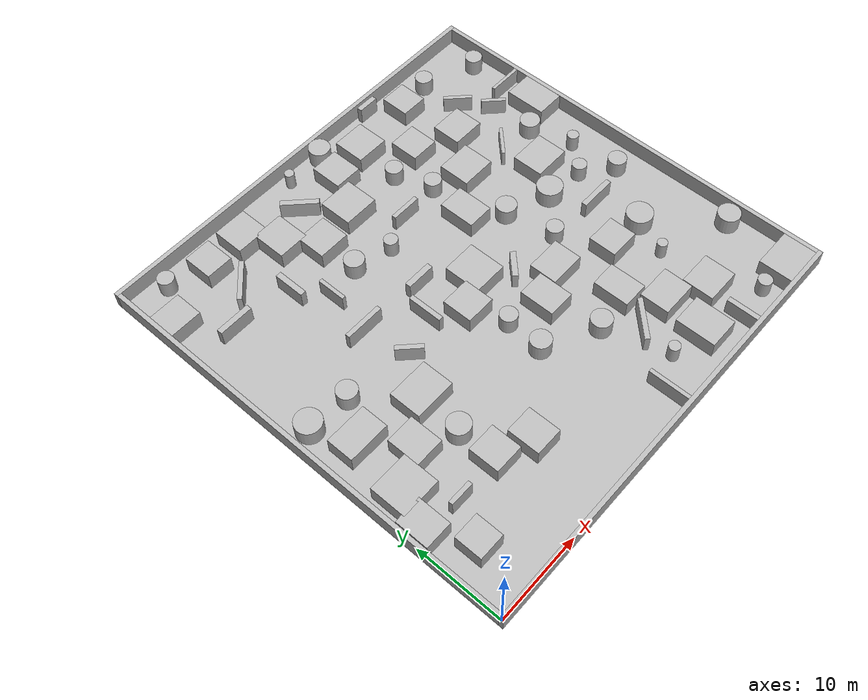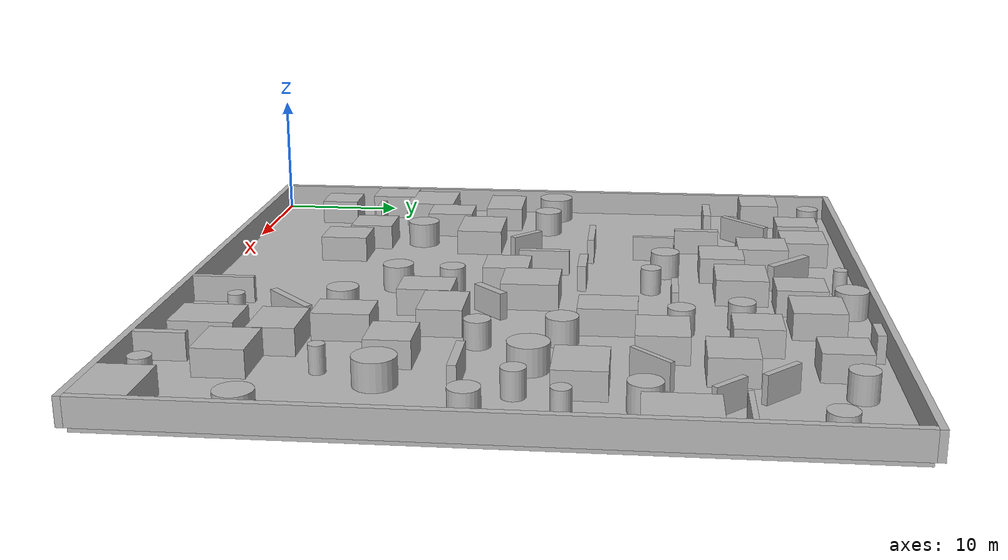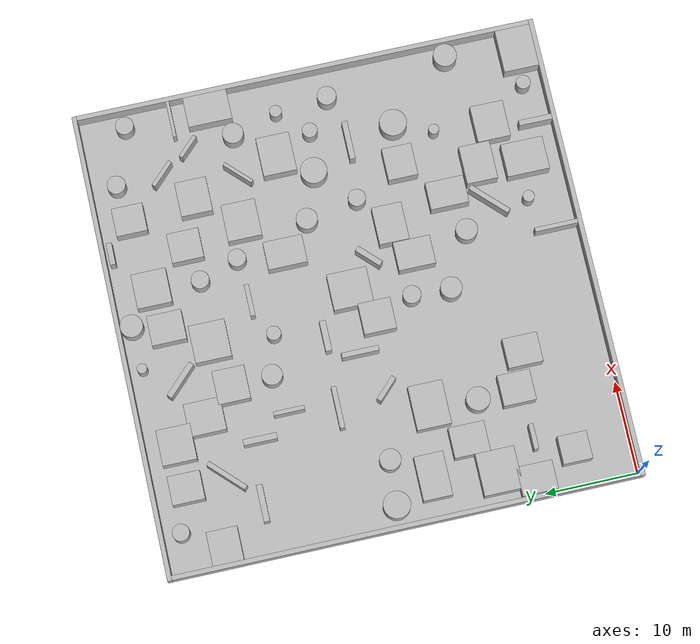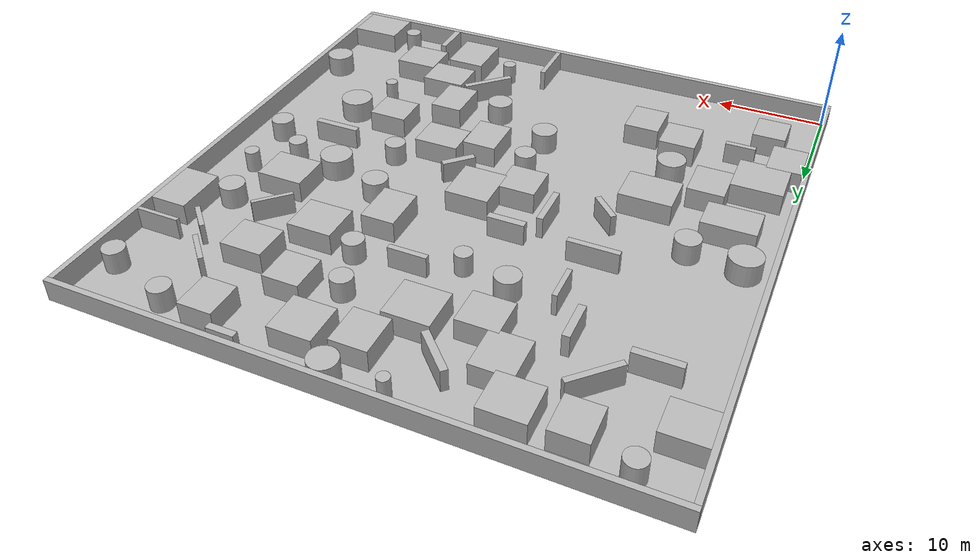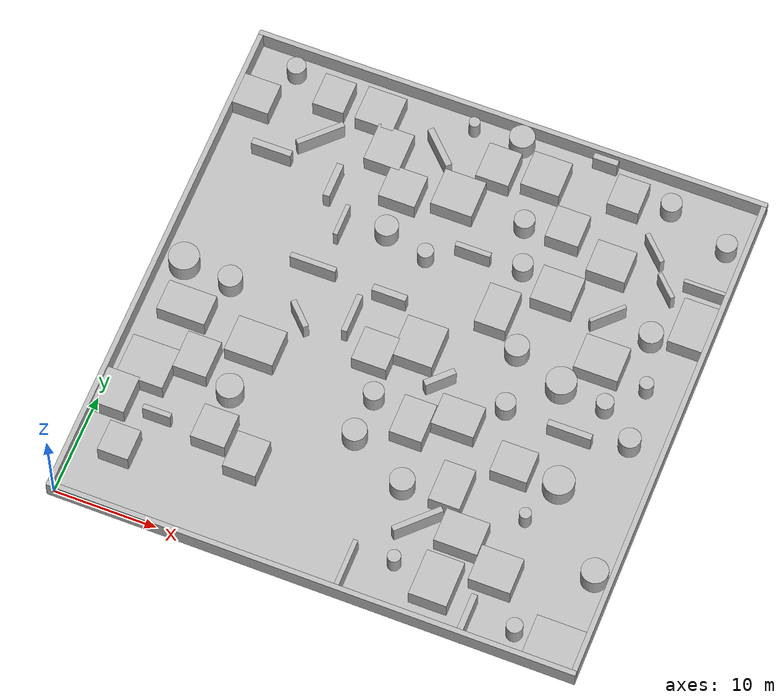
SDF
<?xml version="1.0" ?>
<sdf version="1.7">
  <world name="02_dense">
    <gravity>0 0 -9.8</gravity>
    <include>
      <uri>model://sun</uri>
    </include>

    <model name="ground_plane_custom">
      <static>true</static>
      <pose>25.000000 25.000000 -0.250000 0 0 0</pose>
      <link name="link">
        <collision name="collision">
          <geometry>
            <box>
              <size>50.000000 50.000000 0.500000</size>
            </box>
          </geometry>
        </collision>
        <visual name="visual">
          <geometry>
            <box>
              <size>50.000000 50.000000 0.500000</size>
            </box>
          </geometry>
        </visual>
      </link>
    </model>

    <model name="outer_wall_bottom">
      <static>true</static>
      <pose>25.000000 -0.250000 1.000000 0 0 0</pose>
      <link name="link">
        <collision name="collision">
          <geometry>
            <box>
              <size>51.000000 0.500000 2.000000</size>
            </box>
          </geometry>
        </collision>
        <visual name="visual">
          <geometry>
            <box>
              <size>51.000000 0.500000 2.000000</size>
            </box>
          </geometry>
        </visual>
      </link>
    </model>
    <model name="outer_wall_top">
      <static>true</static>
      <pose>25.000000 50.250000 1.000000 0 0 0</pose>
      <link name="link">
        <collision name="collision">
          <geometry>
            <box>
              <size>51.000000 0.500000 2.000000</size>
            </box>
          </geometry>
        </collision>
        <visual name="visual">
          <geometry>
            <box>
              <size>51.000000 0.500000 2.000000</size>
            </box>
          </geometry>
        </visual>
      </link>
    </model>
    <model name="outer_wall_left">
      <static>true</static>
      <pose>-0.250000 25.000000 1.000000 0 0 0</pose>
      <link name="link">
        <collision name="collision">
          <geometry>
            <box>
              <size>0.500000 50.000000 2.000000</size>
            </box>
          </geometry>
        </collision>
        <visual name="visual">
          <geometry>
            <box>
              <size>0.500000 50.000000 2.000000</size>
            </box>
          </geometry>
        </visual>
      </link>
    </model>
    <model name="outer_wall_right">
      <static>true</static>
      <pose>50.250000 25.000000 1.000000 0 0 0</pose>
      <link name="link">
        <collision name="collision">
          <geometry>
            <box>
              <size>0.500000 50.000000 2.000000</size>
            </box>
          </geometry>
        </collision>
        <visual name="visual">
          <geometry>
            <box>
              <size>0.500000 50.000000 2.000000</size>
            </box>
          </geometry>
        </visual>
      </link>
    </model>

    <model name="obstacle_0000">
      <static>true</static>
      <pose>21.981199 48.590276 1.000000 0 0 0</pose>
      <link name="link">
        <collision name="collision">
          <geometry>
            <cylinder>
              <radius>0.539602</radius>
              <length>2.000000</length>
            </cylinder>
          </geometry>
        </collision>
        <visual name="visual">
          <geometry>
            <cylinder>
              <radius>0.539602</radius>
              <length>2.000000</length>
            </cylinder>
          </geometry>
        </visual>
      </link>
    </model>
    <model name="obstacle_0001">
      <static>true</static>
      <pose>8.624078 46.637991 1.000000 0 0 0.000000</pose>
      <link name="link">
        <collision name="collision">
          <geometry>
            <box>
              <size>3.091987 3.481658 2.000000</size>
            </box>
          </geometry>
        </collision>
        <visual name="visual">
          <geometry>
            <box>
              <size>3.091987 3.481658 2.000000</size>
            </box>
          </geometry>
        </visual>
      </link>
    </model>
    <model name="obstacle_0002">
      <static>true</static>
      <pose>4.158465 48.115484 1.000000 0 0 0</pose>
      <link name="link">
        <collision name="collision">
          <geometry>
            <cylinder>
              <radius>0.921165</radius>
              <length>2.000000</length>
            </cylinder>
          </geometry>
        </collision>
        <visual name="visual">
          <geometry>
            <cylinder>
              <radius>0.921165</radius>
              <length>2.000000</length>
            </cylinder>
          </geometry>
        </visual>
      </link>
    </model>
    <model name="obstacle_0003">
      <static>true</static>
      <pose>19.915779 44.902232 1.000000 0 0 2.356194</pose>
      <link name="link">
        <collision name="collision">
          <geometry>
            <box>
              <size>4.240587 0.628657 2.000000</size>
            </box>
          </geometry>
        </collision>
        <visual name="visual">
          <geometry>
            <box>
              <size>4.240587 0.628657 2.000000</size>
            </box>
          </geometry>
        </visual>
      </link>
    </model>
    <model name="obstacle_0004">
      <static>true</static>
      <pose>26.700431 48.770476 1.000000 0 0 0</pose>
      <link name="link">
        <collision name="collision">
          <geometry>
            <cylinder>
              <radius>1.229524</radius>
              <length>2.000000</length>
            </cylinder>
          </geometry>
        </collision>
        <visual name="visual">
          <geometry>
            <cylinder>
              <radius>1.229524</radius>
              <length>2.000000</length>
            </cylinder>
          </geometry>
        </visual>
      </link>
    </model>
    <model name="obstacle_0005">
      <static>true</static>
      <pose>13.275553 46.705330 1.000000 0 0 0.000000</pose>
      <link name="link">
        <collision name="collision">
          <geometry>
            <box>
              <size>3.843798 3.674290 2.000000</size>
            </box>
          </geometry>
        </collision>
        <visual name="visual">
          <geometry>
            <box>
              <size>3.843798 3.674290 2.000000</size>
            </box>
          </geometry>
        </visual>
      </link>
    </model>
    <model name="obstacle_0006">
      <static>true</static>
      <pose>43.539485 25.780708 1.000000 0 0 0</pose>
      <link name="link">
        <collision name="collision">
          <geometry>
            <cylinder>
              <radius>0.830252</radius>
              <length>2.000000</length>
            </cylinder>
          </geometry>
        </collision>
        <visual name="visual">
          <geometry>
            <cylinder>
              <radius>0.830252</radius>
              <length>2.000000</length>
            </cylinder>
          </geometry>
        </visual>
      </link>
    </model>
    <model name="obstacle_0007">
      <static>true</static>
      <pose>27.917313 17.801764 1.000000 0 0 1.570796</pose>
      <link name="link">
        <collision name="collision">
          <geometry>
            <box>
              <size>4.013657 3.136234 2.000000</size>
            </box>
          </geometry>
        </collision>
        <visual name="visual">
          <geometry>
            <box>
              <size>4.013657 3.136234 2.000000</size>
            </box>
          </geometry>
        </visual>
      </link>
    </model>
    <model name="obstacle_0008">
      <static>true</static>
      <pose>36.114040 8.903570 1.000000 0 0 0.000000</pose>
      <link name="link">
        <collision name="collision">
          <geometry>
            <box>
              <size>4.191245 3.356679 2.000000</size>
            </box>
          </geometry>
        </collision>
        <visual name="visual">
          <geometry>
            <box>
              <size>4.191245 3.356679 2.000000</size>
            </box>
          </geometry>
        </visual>
      </link>
    </model>
    <model name="obstacle_0009">
      <static>true</static>
      <pose>35.139800 22.454204 1.000000 0 0 0</pose>
      <link name="link">
        <collision name="collision">
          <geometry>
            <cylinder>
              <radius>0.954904</radius>
              <length>2.000000</length>
            </cylinder>
          </geometry>
        </collision>
        <visual name="visual">
          <geometry>
            <cylinder>
              <radius>0.954904</radius>
              <length>2.000000</length>
            </cylinder>
          </geometry>
        </visual>
      </link>
    </model>
    <model name="obstacle_0010">
      <static>true</static>
      <pose>34.835241 49.356731 1.000000 0 0 0.000000</pose>
      <link name="link">
        <collision name="collision">
          <geometry>
            <box>
              <size>2.410051 0.604962 2.000000</size>
            </box>
          </geometry>
        </collision>
        <visual name="visual">
          <geometry>
            <box>
              <size>2.410051 0.604962 2.000000</size>
            </box>
          </geometry>
        </visual>
      </link>
    </model>
    <model name="obstacle_0011">
      <static>true</static>
      <pose>15.504735 43.185822 1.000000 0 0 0.000000</pose>
      <link name="link">
        <collision name="collision">
          <geometry>
            <box>
              <size>3.537747 3.968780 2.000000</size>
            </box>
          </geometry>
        </collision>
        <visual name="visual">
          <geometry>
            <box>
              <size>3.537747 3.968780 2.000000</size>
            </box>
          </geometry>
        </visual>
      </link>
    </model>
    <model name="obstacle_0012">
      <static>true</static>
      <pose>8.959192 42.203159 1.000000 0 0 0.785398</pose>
      <link name="link">
        <collision name="collision">
          <geometry>
            <box>
              <size>4.778725 0.535926 2.000000</size>
            </box>
          </geometry>
        </collision>
        <visual name="visual">
          <geometry>
            <box>
              <size>4.778725 0.535926 2.000000</size>
            </box>
          </geometry>
        </visual>
      </link>
    </model>
    <model name="obstacle_0013">
      <static>true</static>
      <pose>31.619476 19.580468 1.000000 0 0 1.570796</pose>
      <link name="link">
        <collision name="collision">
          <geometry>
            <box>
              <size>3.243098 4.144403 2.000000</size>
            </box>
          </geometry>
        </collision>
        <visual name="visual">
          <geometry>
            <box>
              <size>3.243098 4.144403 2.000000</size>
            </box>
          </geometry>
        </visual>
      </link>
    </model>
    <model name="obstacle_0014">
      <static>true</static>
      <pose>33.606653 12.913165 1.000000 0 0 0.000000</pose>
      <link name="link">
        <collision name="collision">
          <geometry>
            <box>
              <size>3.021538 4.163596 2.000000</size>
            </box>
          </geometry>
        </collision>
        <visual name="visual">
          <geometry>
            <box>
              <size>3.021538 4.163596 2.000000</size>
            </box>
          </geometry>
        </visual>
      </link>
    </model>
    <model name="obstacle_0015">
      <static>true</static>
      <pose>1.642724 10.610893 1.000000 0 0 0.000000</pose>
      <link name="link">
        <collision name="collision">
          <geometry>
            <box>
              <size>3.133443 3.817322 2.000000</size>
            </box>
          </geometry>
        </collision>
        <visual name="visual">
          <geometry>
            <box>
              <size>3.133443 3.817322 2.000000</size>
            </box>
          </geometry>
        </visual>
      </link>
    </model>
    <model name="obstacle_0016">
      <static>true</static>
      <pose>31.323988 4.471874 1.000000 0 0 0</pose>
      <link name="link">
        <collision name="collision">
          <geometry>
            <cylinder>
              <radius>0.633432</radius>
              <length>2.000000</length>
            </cylinder>
          </geometry>
        </collision>
        <visual name="visual">
          <geometry>
            <cylinder>
              <radius>0.633432</radius>
              <length>2.000000</length>
            </cylinder>
          </geometry>
        </visual>
      </link>
    </model>
    <model name="obstacle_0017">
      <static>true</static>
      <pose>18.246779 39.779031 1.000000 0 0 1.570796</pose>
      <link name="link">
        <collision name="collision">
          <geometry>
            <box>
              <size>3.465254 3.627381 2.000000</size>
            </box>
          </geometry>
        </collision>
        <visual name="visual">
          <geometry>
            <box>
              <size>3.465254 3.627381 2.000000</size>
            </box>
          </geometry>
        </visual>
      </link>
    </model>
    <model name="obstacle_0018">
      <static>true</static>
      <pose>18.747861 25.748924 1.000000 0 0 1.570796</pose>
      <link name="link">
        <collision name="collision">
          <geometry>
            <box>
              <size>4.004091 0.560081 2.000000</size>
            </box>
          </geometry>
        </collision>
        <visual name="visual">
          <geometry>
            <box>
              <size>4.004091 0.560081 2.000000</size>
            </box>
          </geometry>
        </visual>
      </link>
    </model>
    <model name="obstacle_0019">
      <static>true</static>
      <pose>3.237322 14.325437 1.000000 0 0 0.000000</pose>
      <link name="link">
        <collision name="collision">
          <geometry>
            <box>
              <size>4.568412 4.174479 2.000000</size>
            </box>
          </geometry>
        </collision>
        <visual name="visual">
          <geometry>
            <box>
              <size>4.568412 4.174479 2.000000</size>
            </box>
          </geometry>
        </visual>
      </link>
    </model>
    <model name="obstacle_0020">
      <static>true</static>
      <pose>18.362474 35.358047 1.000000 0 0 0</pose>
      <link name="link">
        <collision name="collision">
          <geometry>
            <cylinder>
              <radius>1.127691</radius>
              <length>2.000000</length>
            </cylinder>
          </geometry>
        </collision>
        <visual name="visual">
          <geometry>
            <cylinder>
              <radius>1.127691</radius>
              <length>2.000000</length>
            </cylinder>
          </geometry>
        </visual>
      </link>
    </model>
    <model name="obstacle_0021">
      <static>true</static>
      <pose>30.220792 45.890354 1.000000 0 0 0.000000</pose>
      <link name="link">
        <collision name="collision">
          <geometry>
            <box>
              <size>3.787742 3.756185 2.000000</size>
            </box>
          </geometry>
        </collision>
        <visual name="visual">
          <geometry>
            <box>
              <size>3.787742 3.756185 2.000000</size>
            </box>
          </geometry>
        </visual>
      </link>
    </model>
    <model name="obstacle_0022">
      <static>true</static>
      <pose>39.085010 26.311933 1.000000 0 0 0</pose>
      <link name="link">
        <collision name="collision">
          <geometry>
            <cylinder>
              <radius>1.448473</radius>
              <length>2.000000</length>
            </cylinder>
          </geometry>
        </collision>
        <visual name="visual">
          <geometry>
            <cylinder>
              <radius>1.448473</radius>
              <length>2.000000</length>
            </cylinder>
          </geometry>
        </visual>
      </link>
    </model>
    <model name="obstacle_0023">
      <static>true</static>
      <pose>35.421541 35.025954 1.000000 0 0 1.570796</pose>
      <link name="link">
        <collision name="collision">
          <geometry>
            <box>
              <size>3.685447 4.070981 2.000000</size>
            </box>
          </geometry>
        </collision>
        <visual name="visual">
          <geometry>
            <box>
              <size>3.685447 4.070981 2.000000</size>
            </box>
          </geometry>
        </visual>
      </link>
    </model>
    <model name="obstacle_0024">
      <static>true</static>
      <pose>23.564294 19.058590 1.000000 0 0 0</pose>
      <link name="link">
        <collision name="collision">
          <geometry>
            <cylinder>
              <radius>0.981344</radius>
              <length>2.000000</length>
            </cylinder>
          </geometry>
        </collision>
        <visual name="visual">
          <geometry>
            <cylinder>
              <radius>0.981344</radius>
              <length>2.000000</length>
            </cylinder>
          </geometry>
        </visual>
      </link>
    </model>
    <model name="obstacle_0025">
      <static>true</static>
      <pose>35.657817 3.843479 1.000000 0 0 1.570796</pose>
      <link name="link">
        <collision name="collision">
          <geometry>
            <box>
              <size>4.579194 3.640339 2.000000</size>
            </box>
          </geometry>
        </collision>
        <visual name="visual">
          <geometry>
            <box>
              <size>4.579194 3.640339 2.000000</size>
            </box>
          </geometry>
        </visual>
      </link>
    </model>
    <model name="obstacle_0026">
      <static>true</static>
      <pose>41.720982 29.863203 1.000000 0 0 0.000000</pose>
      <link name="link">
        <collision name="collision">
          <geometry>
            <box>
              <size>4.293077 3.627389 2.000000</size>
            </box>
          </geometry>
        </collision>
        <visual name="visual">
          <geometry>
            <box>
              <size>4.293077 3.627389 2.000000</size>
            </box>
          </geometry>
        </visual>
      </link>
    </model>
    <model name="obstacle_0027">
      <static>true</static>
      <pose>38.014111 17.106149 1.000000 0 0 1.570796</pose>
      <link name="link">
        <collision name="collision">
          <geometry>
            <box>
              <size>3.228687 3.564378 2.000000</size>
            </box>
          </geometry>
        </collision>
        <visual name="visual">
          <geometry>
            <box>
              <size>3.228687 3.564378 2.000000</size>
            </box>
          </geometry>
        </visual>
      </link>
    </model>
    <model name="obstacle_0028">
      <static>true</static>
      <pose>38.068891 46.688436 1.000000 0 0 1.570796</pose>
      <link name="link">
        <collision name="collision">
          <geometry>
            <box>
              <size>3.361526 3.098024 2.000000</size>
            </box>
          </geometry>
        </collision>
        <visual name="visual">
          <geometry>
            <box>
              <size>3.361526 3.098024 2.000000</size>
            </box>
          </geometry>
        </visual>
      </link>
    </model>
    <model name="obstacle_0029">
      <static>true</static>
      <pose>25.735752 45.187232 1.000000 0 0 1.570796</pose>
      <link name="link">
        <collision name="collision">
          <geometry>
            <box>
              <size>3.736121 3.253115 2.000000</size>
            </box>
          </geometry>
        </collision>
        <visual name="visual">
          <geometry>
            <box>
              <size>3.736121 3.253115 2.000000</size>
            </box>
          </geometry>
        </visual>
      </link>
    </model>
    <model name="obstacle_0030">
      <static>true</static>
      <pose>4.215722 21.186863 1.000000 0 0 0.000000</pose>
      <link name="link">
        <collision name="collision">
          <geometry>
            <box>
              <size>4.759027 3.136529 2.000000</size>
            </box>
          </geometry>
        </collision>
        <visual name="visual">
          <geometry>
            <box>
              <size>4.759027 3.136529 2.000000</size>
            </box>
          </geometry>
        </visual>
      </link>
    </model>
    <model name="obstacle_0031">
      <static>true</static>
      <pose>39.049678 39.485070 1.000000 0 0 1.570796</pose>
      <link name="link">
        <collision name="collision">
          <geometry>
            <box>
              <size>3.404941 3.809297 2.000000</size>
            </box>
          </geometry>
        </collision>
        <visual name="visual">
          <geometry>
            <box>
              <size>3.404941 3.809297 2.000000</size>
            </box>
          </geometry>
        </visual>
      </link>
    </model>
    <model name="obstacle_0032">
      <static>true</static>
      <pose>5.975882 9.981683 1.000000 0 0 0.000000</pose>
      <link name="link">
        <collision name="collision">
          <geometry>
            <box>
              <size>2.734233 0.500879 2.000000</size>
            </box>
          </geometry>
        </collision>
        <visual name="visual">
          <geometry>
            <box>
              <size>2.734233 0.500879 2.000000</size>
            </box>
          </geometry>
        </visual>
      </link>
    </model>
    <model name="obstacle_0033">
      <static>true</static>
      <pose>23.316536 41.000463 1.000000 0 0 1.570796</pose>
      <link name="link">
        <collision name="collision">
          <geometry>
            <box>
              <size>3.905403 4.078377 2.000000</size>
            </box>
          </geometry>
        </collision>
        <visual name="visual">
          <geometry>
            <box>
              <size>3.905403 4.078377 2.000000</size>
            </box>
          </geometry>
        </visual>
      </link>
    </model>
    <model name="obstacle_0034">
      <static>true</static>
      <pose>31.925296 8.641078 1.000000 0 0 0.785398</pose>
      <link name="link">
        <collision name="collision">
          <geometry>
            <box>
              <size>4.908310 0.553577 2.000000</size>
            </box>
          </geometry>
        </collision>
        <visual name="visual">
          <geometry>
            <box>
              <size>4.908310 0.553577 2.000000</size>
            </box>
          </geometry>
        </visual>
      </link>
    </model>
    <model name="obstacle_0035">
      <static>true</static>
      <pose>21.202495 28.952033 1.000000 0 0 0.000000</pose>
      <link name="link">
        <collision name="collision">
          <geometry>
            <box>
              <size>3.325881 0.672989 2.000000</size>
            </box>
          </geometry>
        </collision>
        <visual name="visual">
          <geometry>
            <box>
              <size>3.325881 0.672989 2.000000</size>
            </box>
          </geometry>
        </visual>
      </link>
    </model>
    <model name="obstacle_0036">
      <static>true</static>
      <pose>40.288208 6.604369 1.000000 0 0 0.000000</pose>
      <link name="link">
        <collision name="collision">
          <geometry>
            <box>
              <size>4.025085 3.594099 2.000000</size>
            </box>
          </geometry>
        </collision>
        <visual name="visual">
          <geometry>
            <box>
              <size>4.025085 3.594099 2.000000</size>
            </box>
          </geometry>
        </visual>
      </link>
    </model>
    <model name="obstacle_0037">
      <static>true</static>
      <pose>28.631585 22.589975 1.000000 0 0 0.785398</pose>
      <link name="link">
        <collision name="collision">
          <geometry>
            <box>
              <size>3.069456 0.626325 2.000000</size>
            </box>
          </geometry>
        </collision>
        <visual name="visual">
          <geometry>
            <box>
              <size>3.069456 0.626325 2.000000</size>
            </box>
          </geometry>
        </visual>
      </link>
    </model>
    <model name="obstacle_0038">
      <static>true</static>
      <pose>41.558120 21.948460 1.000000 0 0 0.000000</pose>
      <link name="link">
        <collision name="collision">
          <geometry>
            <box>
              <size>4.259815 0.605561 2.000000</size>
            </box>
          </geometry>
        </collision>
        <visual name="visual">
          <geometry>
            <box>
              <size>4.259815 0.605561 2.000000</size>
            </box>
          </geometry>
        </visual>
      </link>
    </model>
    <model name="obstacle_0039">
      <static>true</static>
      <pose>22.114936 23.153524 1.000000 0 0 1.570796</pose>
      <link name="link">
        <collision name="collision">
          <geometry>
            <box>
              <size>3.498343 3.410280 2.000000</size>
            </box>
          </geometry>
        </collision>
        <visual name="visual">
          <geometry>
            <box>
              <size>3.498343 3.410280 2.000000</size>
            </box>
          </geometry>
        </visual>
      </link>
    </model>
    <model name="obstacle_0040">
      <static>true</static>
      <pose>46.410871 28.923730 1.000000 0 0 0</pose>
      <link name="link">
        <collision name="collision">
          <geometry>
            <cylinder>
              <radius>0.663094</radius>
              <length>2.000000</length>
            </cylinder>
          </geometry>
        </collision>
        <visual name="visual">
          <geometry>
            <cylinder>
              <radius>0.663094</radius>
              <length>2.000000</length>
            </cylinder>
          </geometry>
        </visual>
      </link>
    </model>
    <model name="obstacle_0041">
      <static>true</static>
      <pose>44.627681 38.953702 1.000000 0 0 2.356194</pose>
      <link name="link">
        <collision name="collision">
          <geometry>
            <box>
              <size>2.754993 0.426521 2.000000</size>
            </box>
          </geometry>
        </collision>
        <visual name="visual">
          <geometry>
            <box>
              <size>2.754993 0.426521 2.000000</size>
            </box>
          </geometry>
        </visual>
      </link>
    </model>
    <model name="obstacle_0042">
      <static>true</static>
      <pose>1.806528 43.931782 1.000000 0 0 1.570796</pose>
      <link name="link">
        <collision name="collision">
          <geometry>
            <box>
              <size>3.314197 3.613056 2.000000</size>
            </box>
          </geometry>
        </collision>
        <visual name="visual">
          <geometry>
            <box>
              <size>3.314197 3.613056 2.000000</size>
            </box>
          </geometry>
        </visual>
      </link>
    </model>
    <model name="obstacle_0043">
      <static>true</static>
      <pose>40.618706 34.292259 1.000000 0 0 0.785398</pose>
      <link name="link">
        <collision name="collision">
          <geometry>
            <box>
              <size>3.638886 0.382243 2.000000</size>
            </box>
          </geometry>
        </collision>
        <visual name="visual">
          <geometry>
            <box>
              <size>3.638886 0.382243 2.000000</size>
            </box>
          </geometry>
        </visual>
      </link>
    </model>
    <model name="obstacle_0044">
      <static>true</static>
      <pose>2.109946 25.545855 1.000000 0 0 0</pose>
      <link name="link">
        <collision name="collision">
          <geometry>
            <cylinder>
              <radius>1.464497</radius>
              <length>2.000000</length>
            </cylinder>
          </geometry>
        </collision>
        <visual name="visual">
          <geometry>
            <cylinder>
              <radius>1.464497</radius>
              <length>2.000000</length>
            </cylinder>
          </geometry>
        </visual>
      </link>
    </model>
    <model name="obstacle_0045">
      <static>true</static>
      <pose>45.013792 33.924965 1.000000 0 0 0</pose>
      <link name="link">
        <collision name="collision">
          <geometry>
            <cylinder>
              <radius>1.143753</radius>
              <length>2.000000</length>
            </cylinder>
          </geometry>
        </collision>
        <visual name="visual">
          <geometry>
            <cylinder>
              <radius>1.143753</radius>
              <length>2.000000</length>
            </cylinder>
          </geometry>
        </visual>
      </link>
    </model>
    <model name="obstacle_0046">
      <static>true</static>
      <pose>34.056490 28.174518 1.000000 0 0 0</pose>
      <link name="link">
        <collision name="collision">
          <geometry>
            <cylinder>
              <radius>1.164627</radius>
              <length>2.000000</length>
            </cylinder>
          </geometry>
        </collision>
        <visual name="visual">
          <geometry>
            <cylinder>
              <radius>1.164627</radius>
              <length>2.000000</length>
            </cylinder>
          </geometry>
        </visual>
      </link>
    </model>
    <model name="obstacle_0047">
      <static>true</static>
      <pose>29.217131 11.774292 1.000000 0 0 0</pose>
      <link name="link">
        <collision name="collision">
          <geometry>
            <cylinder>
              <radius>1.182909</radius>
              <length>2.000000</length>
            </cylinder>
          </geometry>
        </collision>
        <visual name="visual">
          <geometry>
            <cylinder>
              <radius>1.182909</radius>
              <length>2.000000</length>
            </cylinder>
          </geometry>
        </visual>
      </link>
    </model>
    <model name="obstacle_0048">
      <static>true</static>
      <pose>30.016408 40.660143 1.000000 0 0 0</pose>
      <link name="link">
        <collision name="collision">
          <geometry>
            <cylinder>
              <radius>0.985278</radius>
              <length>2.000000</length>
            </cylinder>
          </geometry>
        </collision>
        <visual name="visual">
          <geometry>
            <cylinder>
              <radius>0.985278</radius>
              <length>2.000000</length>
            </cylinder>
          </geometry>
        </visual>
      </link>
    </model>
    <model name="obstacle_0049">
      <static>true</static>
      <pose>47.989134 40.088399 1.000000 0 0 0.000000</pose>
      <link name="link">
        <collision name="collision">
          <geometry>
            <box>
              <size>4.021732 0.359671 2.000000</size>
            </box>
          </geometry>
        </collision>
        <visual name="visual">
          <geometry>
            <box>
              <size>4.021732 0.359671 2.000000</size>
            </box>
          </geometry>
        </visual>
      </link>
    </model>
    <model name="obstacle_0050">
      <static>true</static>
      <pose>23.387359 14.806957 1.000000 0 0 0</pose>
      <link name="link">
        <collision name="collision">
          <geometry>
            <cylinder>
              <radius>1.175418</radius>
              <length>2.000000</length>
            </cylinder>
          </geometry>
        </collision>
        <visual name="visual">
          <geometry>
            <cylinder>
              <radius>1.175418</radius>
              <length>2.000000</length>
            </cylinder>
          </geometry>
        </visual>
      </link>
    </model>
    <model name="obstacle_0051">
      <static>true</static>
      <pose>14.249885 34.424324 1.000000 0 0 1.570796</pose>
      <link name="link">
        <collision name="collision">
          <geometry>
            <box>
              <size>3.313741 0.436431 2.000000</size>
            </box>
          </geometry>
        </collision>
        <visual name="visual">
          <geometry>
            <box>
              <size>3.313741 0.436431 2.000000</size>
            </box>
          </geometry>
        </visual>
      </link>
    </model>
    <model name="obstacle_0052">
      <static>true</static>
      <pose>31.499443 36.348988 1.000000 0 0 0</pose>
      <link name="link">
        <collision name="collision">
          <geometry>
            <cylinder>
              <radius>0.976717</radius>
              <length>2.000000</length>
            </cylinder>
          </geometry>
        </collision>
        <visual name="visual">
          <geometry>
            <cylinder>
              <radius>0.976717</radius>
              <length>2.000000</length>
            </cylinder>
          </geometry>
        </visual>
      </link>
    </model>
    <model name="obstacle_0053">
      <static>true</static>
      <pose>7.151428 16.632702 1.000000 0 0 0.000000</pose>
      <link name="link">
        <collision name="collision">
          <geometry>
            <box>
              <size>3.291552 3.828003 2.000000</size>
            </box>
          </geometry>
        </collision>
        <visual name="visual">
          <geometry>
            <box>
              <size>3.291552 3.828003 2.000000</size>
            </box>
          </geometry>
        </visual>
      </link>
    </model>
    <model name="obstacle_0054">
      <static>true</static>
      <pose>13.477477 29.319524 1.000000 0 0 0.000000</pose>
      <link name="link">
        <collision name="collision">
          <geometry>
            <box>
              <size>4.511339 0.533578 2.000000</size>
            </box>
          </geometry>
        </collision>
        <visual name="visual">
          <geometry>
            <box>
              <size>4.511339 0.533578 2.000000</size>
            </box>
          </geometry>
        </visual>
      </link>
    </model>
    <model name="obstacle_0055">
      <static>true</static>
      <pose>34.011093 41.449630 1.000000 0 0 1.570796</pose>
      <link name="link">
        <collision name="collision">
          <geometry>
            <box>
              <size>3.444135 3.260066 2.000000</size>
            </box>
          </geometry>
        </collision>
        <visual name="visual">
          <geometry>
            <box>
              <size>3.444135 3.260066 2.000000</size>
            </box>
          </geometry>
        </visual>
      </link>
    </model>
    <model name="obstacle_0056">
      <static>true</static>
      <pose>22.663183 34.240307 1.000000 0 0 0</pose>
      <link name="link">
        <collision name="collision">
          <geometry>
            <cylinder>
              <radius>0.780824</radius>
              <length>2.000000</length>
            </cylinder>
          </geometry>
        </collision>
        <visual name="visual">
          <geometry>
            <cylinder>
              <radius>0.780824</radius>
              <length>2.000000</length>
            </cylinder>
          </geometry>
        </visual>
      </link>
    </model>
    <model name="obstacle_0057">
      <static>true</static>
      <pose>11.417316 10.518155 1.000000 0 0 1.570796</pose>
      <link name="link">
        <collision name="collision">
          <geometry>
            <box>
              <size>3.506958 3.345805 2.000000</size>
            </box>
          </geometry>
        </collision>
        <visual name="visual">
          <geometry>
            <box>
              <size>3.506958 3.345805 2.000000</size>
            </box>
          </geometry>
        </visual>
      </link>
    </model>
    <model name="obstacle_0058">
      <static>true</static>
      <pose>39.389653 1.811818 1.000000 0 0 1.570796</pose>
      <link name="link">
        <collision name="collision">
          <geometry>
            <box>
              <size>3.623637 0.582603 2.000000</size>
            </box>
          </geometry>
        </collision>
        <visual name="visual">
          <geometry>
            <box>
              <size>3.623637 0.582603 2.000000</size>
            </box>
          </geometry>
        </visual>
      </link>
    </model>
    <model name="obstacle_0059">
      <static>true</static>
      <pose>40.759223 12.721973 1.000000 0 0 0</pose>
      <link name="link">
        <collision name="collision">
          <geometry>
            <cylinder>
              <radius>0.567597</radius>
              <length>2.000000</length>
            </cylinder>
          </geometry>
        </collision>
        <visual name="visual">
          <geometry>
            <cylinder>
              <radius>0.567597</radius>
              <length>2.000000</length>
            </cylinder>
          </geometry>
        </visual>
      </link>
    </model>
    <model name="obstacle_0060">
      <static>true</static>
      <pose>27.551951 2.337876 1.000000 0 0 1.570796</pose>
      <link name="link">
        <collision name="collision">
          <geometry>
            <box>
              <size>4.675751 0.455876 2.000000</size>
            </box>
          </geometry>
        </collision>
        <visual name="visual">
          <geometry>
            <box>
              <size>4.675751 0.455876 2.000000</size>
            </box>
          </geometry>
        </visual>
      </link>
    </model>
    <model name="obstacle_0061">
      <static>true</static>
      <pose>42.287394 42.284178 1.000000 0 0 2.356194</pose>
      <link name="link">
        <collision name="collision">
          <geometry>
            <box>
              <size>3.199062 0.435953 2.000000</size>
            </box>
          </geometry>
        </collision>
        <visual name="visual">
          <geometry>
            <box>
              <size>3.199062 0.435953 2.000000</size>
            </box>
          </geometry>
        </visual>
      </link>
    </model>
    <model name="obstacle_0062">
      <static>true</static>
      <pose>14.301550 23.922290 1.000000 0 0 2.356194</pose>
      <link name="link">
        <collision name="collision">
          <geometry>
            <box>
              <size>2.953022 0.540672 2.000000</size>
            </box>
          </geometry>
        </collision>
        <visual name="visual">
          <geometry>
            <box>
              <size>2.953022 0.540672 2.000000</size>
            </box>
          </geometry>
        </visual>
      </link>
    </model>
    <model name="obstacle_0063">
      <static>true</static>
      <pose>42.110134 47.293880 1.000000 0 0 0</pose>
      <link name="link">
        <collision name="collision">
          <geometry>
            <cylinder>
              <radius>1.002616</radius>
              <length>2.000000</length>
            </cylinder>
          </geometry>
        </collision>
        <visual name="visual">
          <geometry>
            <cylinder>
              <radius>1.002616</radius>
              <length>2.000000</length>
            </cylinder>
          </geometry>
        </visual>
      </link>
    </model>
    <model name="obstacle_0064">
      <static>true</static>
      <pose>25.621495 25.316040 1.000000 0 0 1.570796</pose>
      <link name="link">
        <collision name="collision">
          <geometry>
            <box>
              <size>4.309656 3.970785 2.000000</size>
            </box>
          </geometry>
        </collision>
        <visual name="visual">
          <geometry>
            <box>
              <size>4.309656 3.970785 2.000000</size>
            </box>
          </geometry>
        </visual>
      </link>
    </model>
    <model name="obstacle_0065">
      <static>true</static>
      <pose>42.422205 16.843608 1.000000 0 0 0</pose>
      <link name="link">
        <collision name="collision">
          <geometry>
            <cylinder>
              <radius>1.481533</radius>
              <length>2.000000</length>
            </cylinder>
          </geometry>
        </collision>
        <visual name="visual">
          <geometry>
            <cylinder>
              <radius>1.481533</radius>
              <length>2.000000</length>
            </cylinder>
          </geometry>
        </visual>
      </link>
    </model>
    <model name="obstacle_0066">
      <static>true</static>
      <pose>46.908085 23.169812 1.000000 0 0 0</pose>
      <link name="link">
        <collision name="collision">
          <geometry>
            <cylinder>
              <radius>1.043589</radius>
              <length>2.000000</length>
            </cylinder>
          </geometry>
        </collision>
        <visual name="visual">
          <geometry>
            <cylinder>
              <radius>1.043589</radius>
              <length>2.000000</length>
            </cylinder>
          </geometry>
        </visual>
      </link>
    </model>
    <model name="obstacle_0067">
      <static>true</static>
      <pose>3.919306 6.030207 1.000000 0 0 1.570796</pose>
      <link name="link">
        <collision name="collision">
          <geometry>
            <box>
              <size>3.140368 3.009798 2.000000</size>
            </box>
          </geometry>
        </collision>
        <visual name="visual">
          <geometry>
            <box>
              <size>3.140368 3.009798 2.000000</size>
            </box>
          </geometry>
        </visual>
      </link>
    </model>
    <model name="obstacle_0068">
      <static>true</static>
      <pose>48.334680 36.030721 1.000000 0 0 1.570796</pose>
      <link name="link">
        <collision name="collision">
          <geometry>
            <box>
              <size>4.788716 3.330639 2.000000</size>
            </box>
          </geometry>
        </collision>
        <visual name="visual">
          <geometry>
            <box>
              <size>4.788716 3.330639 2.000000</size>
            </box>
          </geometry>
        </visual>
      </link>
    </model>
    <model name="obstacle_0069">
      <static>true</static>
      <pose>48.347039 45.137851 1.000000 0 0 0</pose>
      <link name="link">
        <collision name="collision">
          <geometry>
            <cylinder>
              <radius>0.987267</radius>
              <length>2.000000</length>
            </cylinder>
          </geometry>
        </collision>
        <visual name="visual">
          <geometry>
            <cylinder>
              <radius>0.987267</radius>
              <length>2.000000</length>
            </cylinder>
          </geometry>
        </visual>
      </link>
    </model>
    <model name="obstacle_0070">
      <static>true</static>
      <pose>11.154564 14.740798 1.000000 0 0 0</pose>
      <link name="link">
        <collision name="collision">
          <geometry>
            <cylinder>
              <radius>1.294596</radius>
              <length>2.000000</length>
            </cylinder>
          </geometry>
        </collision>
        <visual name="visual">
          <geometry>
            <cylinder>
              <radius>1.294596</radius>
              <length>2.000000</length>
            </cylinder>
          </geometry>
        </visual>
      </link>
    </model>
    <model name="obstacle_0071">
      <static>true</static>
      <pose>47.644070 1.913299 1.000000 0 0 0.000000</pose>
      <link name="link">
        <collision name="collision">
          <geometry>
            <box>
              <size>4.711860 3.826598 2.000000</size>
            </box>
          </geometry>
        </collision>
        <visual name="visual">
          <geometry>
            <box>
              <size>4.711860 3.826598 2.000000</size>
            </box>
          </geometry>
        </visual>
      </link>
    </model>
    <model name="obstacle_0072">
      <static>true</static>
      <pose>15.182089 8.981442 1.000000 0 0 1.570796</pose>
      <link name="link">
        <collision name="collision">
          <geometry>
            <box>
              <size>3.744160 3.218940 2.000000</size>
            </box>
          </geometry>
        </collision>
        <visual name="visual">
          <geometry>
            <box>
              <size>3.744160 3.218940 2.000000</size>
            </box>
          </geometry>
        </visual>
      </link>
    </model>
    <model name="obstacle_0073">
      <static>true</static>
      <pose>48.563322 9.697529 1.000000 0 0 0</pose>
      <link name="link">
        <collision name="collision">
          <geometry>
            <cylinder>
              <radius>1.271137</radius>
              <length>2.000000</length>
            </cylinder>
          </geometry>
        </collision>
        <visual name="visual">
          <geometry>
            <cylinder>
              <radius>1.271137</radius>
              <length>2.000000</length>
            </cylinder>
          </geometry>
        </visual>
      </link>
    </model>
    <model name="obstacle_0074">
      <static>true</static>
      <pose>30.993357 31.213292 1.000000 0 0 1.570796</pose>
      <link name="link">
        <collision name="collision">
          <geometry>
            <box>
              <size>4.246563 3.065763 2.000000</size>
            </box>
          </geometry>
        </collision>
        <visual name="visual">
          <geometry>
            <box>
              <size>4.246563 3.065763 2.000000</size>
            </box>
          </geometry>
        </visual>
      </link>
    </model>
    <model name="obstacle_0075">
      <static>true</static>
      <pose>5.319668 39.137467 1.000000 0 0 0.000000</pose>
      <link name="link">
        <collision name="collision">
          <geometry>
            <box>
              <size>3.955037 0.640510 2.000000</size>
            </box>
          </geometry>
        </collision>
        <visual name="visual">
          <geometry>
            <box>
              <size>3.955037 0.640510 2.000000</size>
            </box>
          </geometry>
        </visual>
      </link>
    </model>
    <model name="obstacle_0076">
      <static>true</static>
      <pose>26.716068 35.982482 1.000000 0 0 0.000000</pose>
      <link name="link">
        <collision name="collision">
          <geometry>
            <box>
              <size>3.475132 0.504458 2.000000</size>
            </box>
          </geometry>
        </collision>
        <visual name="visual">
          <geometry>
            <box>
              <size>3.475132 0.504458 2.000000</size>
            </box>
          </geometry>
        </visual>
      </link>
    </model>
    <model name="obstacle_0077">
      <static>true</static>
      <pose>6.886453 25.179182 1.000000 0 0 0</pose>
      <link name="link">
        <collision name="collision">
          <geometry>
            <cylinder>
              <radius>1.147331</radius>
              <length>2.000000</length>
            </cylinder>
          </geometry>
        </collision>
        <visual name="visual">
          <geometry>
            <cylinder>
              <radius>1.147331</radius>
              <length>2.000000</length>
            </cylinder>
          </geometry>
        </visual>
      </link>
    </model>
    <model name="obstacle_0078">
      <static>true</static>
      <pose>11.602106 19.874930 1.000000 0 0 0.000000</pose>
      <link name="link">
        <collision name="collision">
          <geometry>
            <box>
              <size>4.758614 3.700169 2.000000</size>
            </box>
          </geometry>
        </collision>
        <visual name="visual">
          <geometry>
            <box>
              <size>4.758614 3.700169 2.000000</size>
            </box>
          </geometry>
        </visual>
      </link>
    </model>
    <model name="obstacle_0079">
      <static>true</static>
      <pose>11.959895 38.016981 1.000000 0 0 1.570796</pose>
      <link name="link">
        <collision name="collision">
          <geometry>
            <box>
              <size>3.607856 0.660809 2.000000</size>
            </box>
          </geometry>
        </collision>
        <visual name="visual">
          <geometry>
            <box>
              <size>3.607856 0.660809 2.000000</size>
            </box>
          </geometry>
        </visual>
      </link>
    </model>
    <model name="obstacle_0080">
      <static>true</static>
      <pose>43.777049 2.116230 1.000000 0 0 0</pose>
      <link name="link">
        <collision name="collision">
          <geometry>
            <cylinder>
              <radius>0.773519</radius>
              <length>2.000000</length>
            </cylinder>
          </geometry>
        </collision>
        <visual name="visual">
          <geometry>
            <cylinder>
              <radius>0.773519</radius>
              <length>2.000000</length>
            </cylinder>
          </geometry>
        </visual>
      </link>
    </model>
  </world>
</sdf>
